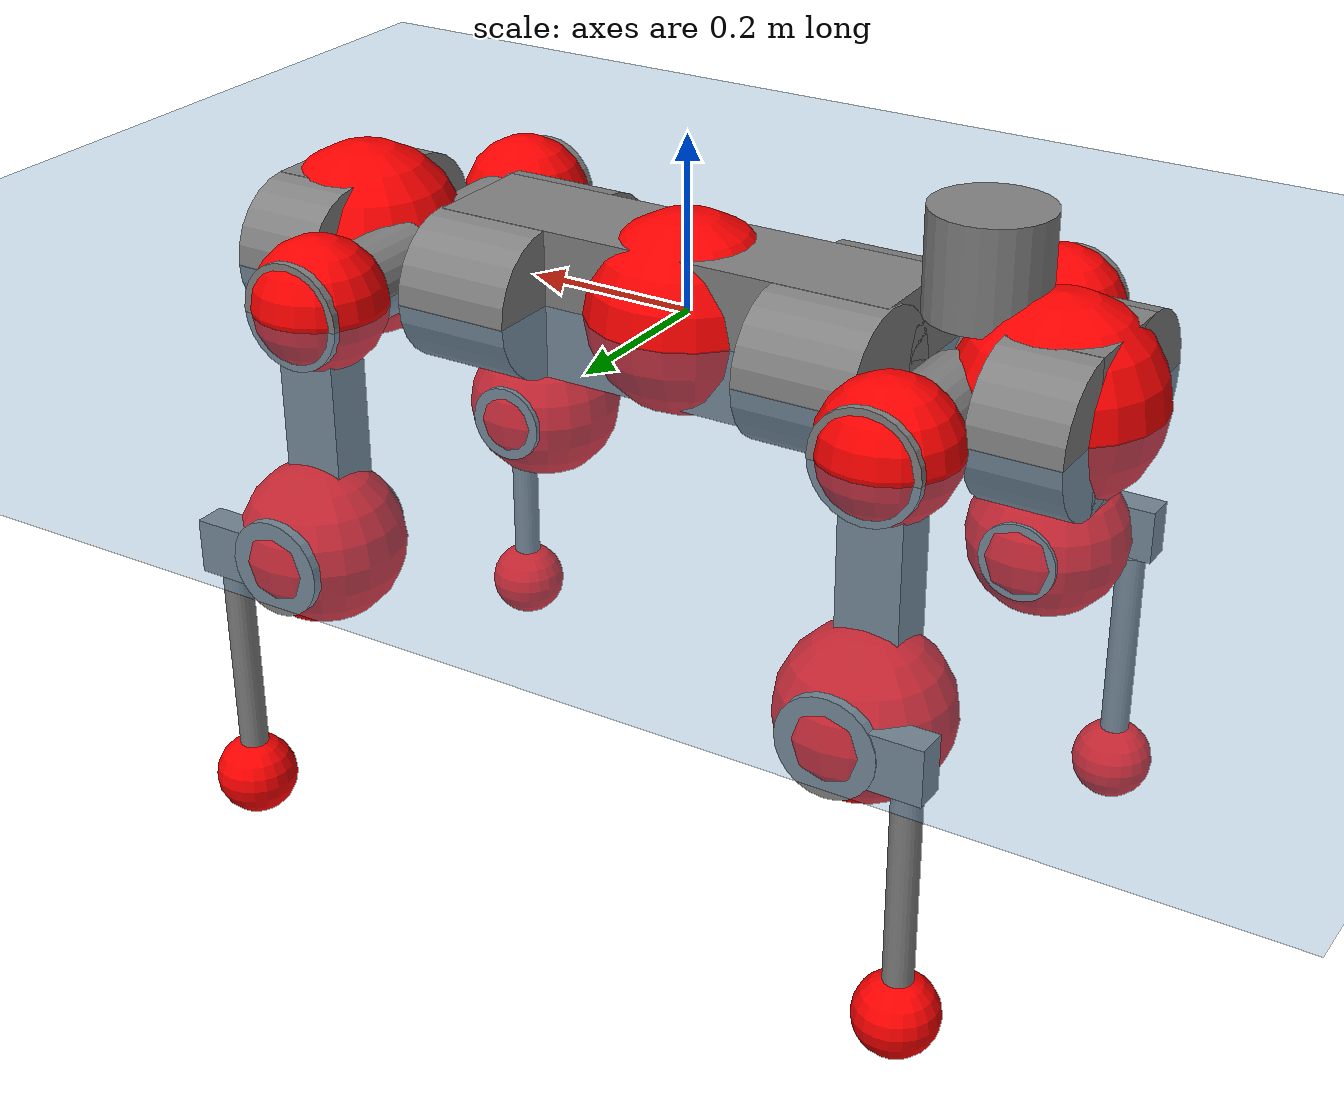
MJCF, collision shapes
<mujoco model="anymal_c">
  <compiler angle="radian" assetdir="assets" balanceinertia="true" inertiafromgeom="false"/>

  <option timestep="0.005" density="1.2" viscosity="2e-05"/>

  <size nkey="1"/>

  <visual>
    <quality shadowsize="8192"/>
    <map shadowclip="0.5"/>
  </visual>

  <default>
    <default class="/">
      <material specular="0" shininess="0.25"/>
      <geom contype="0" conaffinity="0" group="1" solref="-1000 -80"/>
      <site size="0.01 0.005 0.005" group="5"/>
      <general forcelimited="true" forcerange="-80 80" biastype="affine" gainprm="80" biasprm="0 -80 -2"/>
      <default class="anymal_c">
        <joint armature="0.01" damping="0.01" frictionloss="0.1"/>
        <default class="visual">
          <geom type="mesh" group="2"/>
          <default class="visual_zflip"/>
        </default>
        <default class="collision">
          <geom type="cylinder" group="3"/>
          <default class="foot">
            <geom size="0.03 0 0" type="sphere" condim="6" priority="1" friction="0.8 0.02 0.01" solimp="0.015 1 0.03"/>
          </default>
        </default>
      </default>
      <default class="reward_collision_sphere">
        <geom group="5" rgba="1 0 0 1"/>
      </default>
    </default>
  </default>

  <asset>
    <texture type="skybox" colorspace="auto" name="//unnamed_texture_0" builtin="gradient" rgb1="0.95 0.95 0.95" rgb2="0.95 0.95 0.95" width="100" height="600"/>
    <texture type="2d" colorspace="auto" name="texplane" builtin="checker" rgb1="0.345 0.575 0.748" rgb2="0.345 0.575 0.748" markrgb="1 1 1" width="512" height="512"/>
    <texture type="2d" colorspace="linear" name="base" file="base.png"/>
    <texture type="2d" colorspace="linear" name="top_shell" file="top_shell.png"/>
    <texture type="2d" colorspace="linear" name="bottom_shell" file="bottom_shell.png"/>
    <texture type="2d" colorspace="linear" name="remote" file="remote.png"/>
    <texture type="2d" colorspace="linear" name="hatch" file="hatch.png"/>
    <texture type="2d" colorspace="linear" name="handle" file="handle.png"/>
    <texture type="2d" colorspace="linear" name="face" file="face.png"/>
    <texture type="2d" colorspace="linear" name="battery" file="battery.png"/>
    <texture type="2d" colorspace="linear" name="lidar_cage" file="lidar_cage.png"/>
    <texture type="2d" colorspace="linear" name="depth_camera" file="depth_camera.png"/>
    <texture type="2d" colorspace="linear" name="wide_angle_camera" file="wide_angle_camera.png"/>
    <texture type="2d" colorspace="linear" name="lidar" file="lidar.png"/>
    <texture type="2d" colorspace="linear" name="drive" file="drive.png"/>
    <texture type="2d" colorspace="linear" name="hip_l" file="hip_l.png"/>
    <texture type="2d" colorspace="linear" name="shank_l" file="shank_l.png"/>
    <texture type="2d" colorspace="linear" name="foot" file="foot.png"/>
    <texture type="2d" colorspace="linear" name="thigh" file="thigh.png"/>
    <texture type="2d" colorspace="linear" name="shank_r" file="shank_r.png"/>
    <texture type="2d" colorspace="linear" name="hip_r" file="hip_r.png"/>
    <material name="MatPlane" class="/" texture="texplane" texuniform="true" texrepeat="2 2" specular="0.9" shininess="0.5"/>
    <material name="black_plastic" class="/" rgba="0.007 0.007 0.007 1"/>
    <material name="green" class="/" rgba="0.052 0.178 0.033 1"/>
    <material name="red" class="/" rgba="0.178 0.006 0.005 1"/>
    <material name="yellow" class="/" rgba="0.178 0.119 0.006 1"/>
    <material name="lwl" class="/" rgba="0.8 0.8 0.8 1"/>
    <material name="base" class="/" texture="base"/>
    <material name="top_shell" class="/" texture="top_shell"/>
    <material name="bottom_shell" class="/" texture="bottom_shell"/>
    <material name="hip_l" class="/" texture="hip_l"/>
    <material name="thigh" class="/" texture="thigh"/>
    <material name="shank_l" class="/" texture="shank_l"/>
    <material name="foot" class="/" texture="foot"/>
    <material name="hip_r" class="/" texture="hip_r"/>
    <material name="shank" class="/" texture="shank_r"/>
    <material name="hatch" class="/" texture="hatch"/>
    <material name="remote" class="/" texture="remote"/>
    <material name="handle" class="/" texture="handle"/>
    <material name="face" class="/" texture="face"/>
    <material name="depth_camera" class="/" texture="depth_camera"/>
    <material name="wide_angle_camera" class="/" texture="wide_angle_camera"/>
    <material name="battery" class="/" texture="battery"/>
    <material name="lidar_cage" class="/" texture="lidar_cage"/>
    <material name="lidar" class="/" texture="lidar"/>
    <material name="drive" class="/" texture="drive"/>
    <mesh name="base_0" class="/" file="base_0.obj"/>
    <mesh name="base_1" class="/" file="base_1.obj"/>
    <mesh name="base_2" class="/" file="base_2.obj"/>
    <mesh name="base_3" class="/" file="base_3.obj"/>
    <mesh name="base_4" class="/" file="base_4.obj"/>
    <mesh name="base_5" class="/" file="base_5.obj"/>
    <mesh name="top_shell" class="/" file="top_shell.obj"/>
    <mesh name="bottom_shell" class="/" file="bottom_shell.obj"/>
    <mesh name="remote" class="/" file="remote.obj"/>
    <mesh name="handle" class="/" file="handle.obj"/>
    <mesh name="face" class="/" file="face.obj"/>
    <mesh name="wide_angle_camera" class="/" file="wide_angle_camera.obj"/>
    <mesh name="depth_camera" class="/" file="depth_camera.obj"/>
    <mesh name="battery" class="/" file="battery.obj"/>
    <mesh name="lidar_cage" class="/" file="lidar_cage.obj"/>
    <mesh name="lidar" class="/" file="lidar.obj"/>
    <mesh name="drive" class="/" file="drive.obj"/>
    <mesh name="hip_l" class="/" file="hip_l.obj"/>
    <mesh name="thigh" class="/" file="thigh.obj"/>
    <mesh name="shank_l" class="/" file="shank_l.obj"/>
    <mesh name="foot" class="/" file="foot.obj"/>
    <mesh name="hip_r" class="/" file="hip_r.obj"/>
    <mesh name="hatch" class="/" file="hatch.obj"/>
    <mesh name="shank_r" class="/" file="shank_r.obj"/>
  </asset>

  <worldbody>
    <geom name="floor" class="/" size="100 100 0.125" type="plane" group="0" material="MatPlane"/>
    <light name="toplight_shadow" class="/" pos="0 0 5" dir="0.0990148 0.0990148 -0.990148" type="directional" ambient="0.04 0.04 0.04" diffuse="0.55 0.55 0.55" specular="0.12 0.12 0.12"/>
    <light name="toplight_fill" class="/" pos="0 0 5" dir="0.0990148 0.0990148 -0.990148" type="directional" castshadow="false" ambient="0.04 0.04 0.04" diffuse="0.3 0.3 0.3" specular="0.08 0.08 0.08"/>
    <body name="trunk" childclass="anymal_c" pos="8.13092e-05 7.29697e-05 -0.000383209" quat="1 -5.4438e-05 2.0262e-05 -4.16887e-05">
      <inertial pos="0.00254112 0.00186791 0.0487481" quat="0.499636 0.500222 0.499954 0.500188" mass="16.9873" diaginertia="0.567457 0.404666 0.204737"/>
      <joint name="//unnamed_joint_0" type="free" armature="0" damping="0" frictionloss="0"/>
      <geom name="//unnamed_geom_1" class="visual" material="green" mesh="base_0"/>
      <geom name="//unnamed_geom_2" class="visual" material="yellow" mesh="base_1"/>
      <geom name="//unnamed_geom_3" class="visual" material="red" mesh="base_2"/>
      <geom name="//unnamed_geom_4" class="visual" material="black_plastic" mesh="base_3"/>
      <geom name="//unnamed_geom_5" class="visual" material="lwl" mesh="base_4"/>
      <geom name="//unnamed_geom_6" class="visual" material="base" mesh="base_5"/>
      <geom name="trunk_1" class="collision" size="0.277838 0.0670644 0.0862257" type="box"/>
      <geom name="trunk_2" class="collision" size="0.0862257 0.0694596" pos="0.211366 0.0640537 0" quat="0.707107 0 0.707107 0"/>
      <geom name="trunk_3" class="collision" size="0.0862257 0.0694596" pos="-0.211366 0.0640537 0" quat="0.707107 0 0.707107 0"/>
      <geom name="trunk_4" class="collision" size="0.0862257 0.0694596" pos="0.211366 -0.0640537 0" quat="0.707107 0 0.707107 0"/>
      <geom name="trunk_5" class="collision" size="0.0862257 0.0694596" pos="-0.211366 -0.0640537 0" quat="0.707107 0 0.707107 0"/>
      <geom name="//unnamed_geom_12" class="visual" material="top_shell" mesh="top_shell"/>
      <geom name="//unnamed_geom_13" class="visual" material="bottom_shell" mesh="bottom_shell"/>
      <geom name="//unnamed_geom_14" class="visual" material="remote" mesh="remote"/>
      <geom name="//unnamed_geom_15" class="visual" material="handle" mesh="handle"/>
      <geom name="//unnamed_geom_16" class="visual" pos="0.402809 0 0" quat="1 0 0 0" material="face" mesh="face"/>
      <geom name="trunk_6" class="collision" size="0.0526935 0.0670644 0.0862257" pos="0.456258 0 0" type="box"/>
      <geom name="//unnamed_geom_18" class="collision" size="0.0862257 0.0526935" pos="0.456258 0.0640537 0" quat="0.707107 0 0.707107 0"/>
      <geom name="//unnamed_geom_19" class="collision" size="0.0862257 0.0526935" pos="0.456258 -0.0640537 0" quat="0.707107 0 0.707107 0"/>
      <geom name="//unnamed_geom_20" class="visual" pos="0.44863 0 -0.0289485" quat="0.965926 0 0.258819 0" material="depth_camera" mesh="depth_camera"/>
      <geom name="//unnamed_geom_21" class="visual" pos="0.498531 0 0.0147805" material="wide_angle_camera" mesh="wide_angle_camera"/>
      <geom name="//unnamed_geom_22" class="visual_zflip" pos="-0.402809 0 0" quat="0 0 0 1" material="face" mesh="face"/>
      <geom name="trunk_7" class="collision" size="0.0526935 0.0670644 0.0862257" pos="-0.456258 0 0" quat="0 0 0 1" type="box"/>
      <geom name="//unnamed_geom_24" class="collision" size="0.0862257 0.0526935" pos="-0.456258 -0.0640537 0" quat="0 -0.707107 0 0.707107"/>
      <geom name="//unnamed_geom_25" class="collision" size="0.0862257 0.0526935" pos="-0.456258 0.0640537 0" quat="0 -0.707107 0 0.707107"/>
      <geom name="//unnamed_geom_26" class="visual" pos="-0.44863 0 -0.0289485" quat="0 -0.258819 0 0.965926" material="depth_camera" mesh="depth_camera"/>
      <geom name="//unnamed_geom_27" class="visual_zflip" pos="-0.498531 0 0.0147805" quat="0 0 0 1" material="wide_angle_camera" mesh="wide_angle_camera"/>
      <geom name="//unnamed_geom_28" class="visual" material="battery" mesh="battery"/>
      <geom name="//unnamed_geom_29" class="visual" pos="0 0.069221 0.0285641" quat="0.683013 -0.183013 0.183013 0.683013" material="depth_camera" mesh="depth_camera"/>
      <geom name="//unnamed_geom_30" class="visual" pos="0 -0.069221 0.0285641" quat="0.683013 0.183013 0.183013 -0.683013" material="depth_camera" mesh="depth_camera"/>
      <geom name="//unnamed_geom_31" class="visual" pos="-0.353734 0 0.0725695" quat="1 0 0 0" material="lidar_cage" mesh="lidar_cage"/>
      <geom name="trunk_8" class="collision" size="0.0670644 0.0574838" pos="-0.353734 0 0.13181"/>
      <geom name="//unnamed_geom_33" class="visual" pos="-0.353734 -2.22929e-05 0.1404" quat="0.707107 0 0 -0.707107" material="lidar" mesh="lidar"/>
      <geom name="//unnamed_geom_34" class="visual" pos="0.291442 0.0951912 -1.24698e-09" quat="0.258819 0.965926 0 0" material="drive" mesh="drive"/>
      <geom name="//unnamed_geom_35" class="visual" pos="0.291442 -0.0951912 1.24698e-09" quat="0.258819 -0.965926 0 0" material="drive" mesh="drive"/>
      <geom name="//unnamed_geom_36" class="visual" pos="-0.291442 0.0951912 1.24698e-09" quat="0 0 0.965926 -0.258819" material="drive" mesh="drive"/>
      <geom name="//unnamed_geom_37" class="visual" pos="-0.291442 -0.0951912 -1.24698e-09" quat="0 0 -0.965926 -0.258819" material="drive" mesh="drive"/>
      <geom name="//unnamed_geom_38" class="visual" pos="0.112728 0 0.0720759" quat="1 0 0 0" material="hatch" mesh="hatch"/>
      <geom name="//unnamed_geom_39" class="reward_collision_sphere" size="0.114968"/>
      <geom name="//unnamed_geom_40" class="reward_collision_sphere" size="0.114968" pos="0.437308 0 0"/>
      <geom name="//unnamed_geom_41" class="reward_collision_sphere" size="0.114968" pos="-0.437308 0 0"/>
      <site name="imu" pos="0.236823 0.0104904 0.0405752" size="0.00958063"/>
      <camera name="track" pos="0 -1.83011 0" quat="0.707107 0.707107 0 0" mode="trackcom"/>
      <camera name="ego_camera" pos="0.437308 0 -0.0394936" quat="-0.5 -0.5 0.5 0.5"/>
      <body name="LF_HIP" pos="0.292176 0.095684 0.000802718" quat="0.258663 0.965967 0.000433508 -1.97156e-05">
        <inertial pos="0.0537354 -0.0134428 -0.00731895" quat="-0.126743 0.71074 -0.135284 0.678589" mass="2.49036" diaginertia="0.00512276 0.00321372 0.00310106"/>
        <joint name="LF_HAA" pos="0 0 0" axis="0.999997 -0.00107413 -0.00221073" range="-0.699618 0.48814" armature="0.00946609" damping="0.00670497" frictionloss="0.0899331"/>
        <geom name="//unnamed_geom_42" class="visual" pos="0 -7.3354e-05 1.20483e-05" quat="0.258819 -0.965926 0 0" material="hip_l" mesh="hip_l"/>
        <geom name="//unnamed_geom_43" class="visual" pos="0.0582106 -0.0698131 -0.0408413" quat="0.183013 -0.683013 0.683013 0.183013" material="drive" mesh="drive"/>
        <geom name="//unnamed_geom_44" class="collision" size="0.0479032 0.0670644" pos="0.0582106 -0.0109438 -0.00681759" quat="-0.353553 -0.612372 0.612372 -0.353553"/>
        <body name="LF_THIGH" pos="0.0586423 -0.066198 -0.0419711" quat="0.183082 -0.682955 0.683119 0.182761">
          <inertial pos="0.0303866 5.10381e-05 -0.241919" quat="0.993159 -0.00519834 -0.0808827 0.0840637" mass="2.6277" diaginertia="0.0263017 0.0189927 0.00374114"/>
          <joint name="LF_HFE" pos="0 0 0" axis="0.999998 -0.00213362 0.000577038" stiffness="0.00423315" range="-3.14667 3.11864" armature="0.00941764" damping="0.00848442" frictionloss="0.0984682"/>
          <geom name="//unnamed_geom_45" class="visual" pos="0.00112897 1.77899e-06 0" quat="0.707107 0 0 -0.707107" material="thigh" mesh="thigh"/>
          <geom name="//unnamed_geom_46" class="collision" size="0.0622741 0.0383225" pos="0.0388718 0 0" quat="0.5 0.5 -0.5 -0.5"/>
          <geom name="//unnamed_geom_47" class="collision" size="0.0359274 0.0287419 0.135388" pos="0.0291539 0 -0.139525" quat="0.707107 0 0 -0.707107" type="box"/>
          <geom name="//unnamed_geom_48" class="visual" pos="0.0974711 0 -0.281392" quat="1 0 0 0" material="drive" mesh="drive"/>
          <geom name="//unnamed_geom_49" class="collision" size="0.0479032 0.0670644" pos="0.0294454 0 -0.281392" quat="0.707107 0 0.707107 0"/>
          <geom name="//unnamed_geom_50" class="reward_collision_sphere" size="0.076645" pos="0.0242949 0 0"/>
          <body name="LF_SHANK" pos="0.0981821 -0.000378074 -0.281359" quat="1 -0.000245564 0.000953534 -0.000135025">
            <inertial pos="0.0049096 -0.055988 -0.0798696" quat="0.992925 -0.116086 -0.00106246 -0.0249496" mass="0.519999" diaginertia="0.00882269 0.00581596 0.00104747"/>
            <joint name="LF_KFE" pos="0 0 0" axis="1 0.000560223 -0.000517849" range="-3.13092 3.13759" armature="0.00997678" damping="0.0146142" frictionloss="0.0938688"/>
            <geom name="//unnamed_geom_51" class="visual" pos="0.000368131 0.00196289 0" quat="0.707107 0 0 -0.707107" material="shank_l" mesh="shank_l"/>
            <geom name="LF_kfe_act" class="collision" size="0.0574838 0.0191613" pos="0.0194359 0 0" quat="0.5 0.5 -0.5 -0.5"/>
            <geom name="//unnamed_geom_53" class="collision" size="0.0550877 0.0323346 0.0182032" pos="0.0194359 -0.0526146 0" quat="0.5 0.5 -0.5 -0.5" type="box"/>
            <geom name="//unnamed_geom_54" class="visual" pos="0.0126818 -0.0798463 -0.333692" quat="0.382683 0 0 -0.92388" material="foot" mesh="foot"/>
            <geom name="LF_calf" class="collision" size="0.0167661 0.135328" pos="0.0126819 -0.0804789 -0.166846" quat="0.707107 0 0 -0.707107"/>
            <geom name="LF_foot" class="foot" size="0.0307513" pos="0.0126819 -0.0804789 -0.311476" quat="0.707107 0 0 -0.707107"/>
            <geom name="//unnamed_geom_57" class="reward_collision_sphere" size="0.0958063" pos="-0.0485898 0 0"/>
            <geom name="//unnamed_geom_58" class="reward_collision_sphere" size="0.0479032" pos="0.0126819 -0.0804789 -0.311476"/>
            <site name="LF_foot" class="foot" pos="0.0126819 -0.0804789 -0.311476" quat="0.707107 0 0 -0.707107" size="0.00958063"/>
          </body>
        </body>
      </body>
      <body name="RF_HIP" pos="0.290984 -0.0954174 -0.000112065" quat="0.258907 -0.965902 -0.00036775 -7.12224e-05">
        <inertial pos="0.0551009 0.0145557 -0.00835473" quat="0.135228 0.679079 0.127989 0.710059" mass="2.36891" diaginertia="0.00494684 0.00312204 0.0030875"/>
        <joint name="RF_HAA" pos="0 0 0" axis="0.999996 -0.0017283 -0.00244131" range="-0.477617 0.6862" armature="0.00972456" damping="0.00565837" frictionloss="0.0961843"/>
        <geom name="//unnamed_geom_59" class="visual" pos="0 7.33534e-05 1.20483e-05" quat="0.258819 0.965926 0 0" material="hip_r" mesh="hip_r"/>
        <geom name="//unnamed_geom_60" class="visual" pos="0.0582106 0.0698131 -0.0408413" quat="0.183013 0.683013 0.683013 -0.183013" material="drive" mesh="drive"/>
        <geom name="//unnamed_geom_61" class="collision" size="0.0479032 0.0670644" pos="0.0582106 0.0109438 -0.00681759" quat="-0.353553 0.612372 0.612372 0.353553"/>
        <body name="RF_THIGH" pos="0.0607741 0.0660271 -0.0421351" quat="0.182599 0.682833 0.683261 -0.183171">
          <inertial pos="0.0298057 -0.000427005 -0.24234" quat="0.992838 -0.0054006 -0.0804012 0.0881945" mass="2.80472" diaginertia="0.0263478 0.0199652 0.0040341"/>
          <joint name="RF_HFE" pos="0 0 0" axis="0.999952 -0.00625995 -0.00750677" stiffness="0.0057764" range="-3.09637 3.10271" armature="0.0094371" damping="0.00276856" frictionloss="0.0978155"/>
          <geom name="//unnamed_geom_62" class="visual" pos="0.00112897 1.77899e-06 0" quat="0.707107 0 0 -0.707107" material="thigh" mesh="thigh"/>
          <geom name="//unnamed_geom_63" class="collision" size="0.0622741 0.0383225" pos="0.0388718 0 0" quat="0.5 0.5 0.5 0.5"/>
          <geom name="//unnamed_geom_64" class="collision" size="0.0359274 0.0287419 0.135388" pos="0.0291539 0 -0.139525" quat="0.707107 0 0 0.707107" type="box"/>
          <geom name="//unnamed_geom_65" class="visual" pos="0.0974711 0 -0.281392" quat="1 0 0 0" material="drive" mesh="drive"/>
          <geom name="//unnamed_geom_66" class="collision" size="0.0479032 0.0670644" pos="0.0294454 0 -0.281392" quat="0.707107 0 0.707107 0"/>
          <geom name="//unnamed_geom_67" class="reward_collision_sphere" size="0.076645" pos="0.0242949 0 0"/>
          <body name="RF_SHANK" pos="0.0991579 -0.000483631 -0.281962" quat="1 -3.5461e-05 -1.83146e-06 -1.34565e-05">
            <inertial pos="0.00654559 0.0564729 -0.0772525" quat="0.992637 0.118398 0.00208703 0.0254939" mass="0.503127" diaginertia="0.00878793 0.00595701 0.00105584"/>
            <joint name="RF_KFE" pos="0 0 0" axis="0.999914 0.0100565 0.00846295" range="-3.15268 3.11184" armature="0.00961654" damping="0.010217" frictionloss="0.0846745"/>
            <geom name="//unnamed_geom_68" class="visual" pos="0.000368129 -0.00196289 0" quat="0.707107 0 0 0.707107" material="shank" mesh="shank_r"/>
            <geom name="RF_kfe_act" class="collision" size="0.0574838 0.0191613" pos="0.0194359 0 0" quat="0.5 0.5 0.5 0.5"/>
            <geom name="//unnamed_geom_70" class="collision" size="0.0550877 0.0323346 0.0182032" pos="0.0194359 0.0526146 0" quat="0.5 0.5 0.5 0.5" type="box"/>
            <geom name="//unnamed_geom_71" class="visual" pos="0.012682 0.0798463 -0.333692" quat="0.382683 0 0 0.92388" material="foot" mesh="foot"/>
            <geom name="RF_calf" class="collision" size="0.0167661 0.135328" pos="0.0126819 0.0804789 -0.166846" quat="0.707107 0 0 0.707107"/>
            <geom name="RF_foot" class="foot" size="0.0296482" pos="0.0126819 0.0804789 -0.311476" quat="0.707107 0 0 0.707107"/>
            <geom name="//unnamed_geom_74" class="reward_collision_sphere" size="0.0958063" pos="-0.0485898 0 0"/>
            <geom name="//unnamed_geom_75" class="reward_collision_sphere" size="0.0479032" pos="0.0126819 0.0804789 -0.311476"/>
            <site name="RF_foot" class="foot" pos="0.0126819 0.0804789 -0.311476" quat="0.707107 0 0 0.707107" size="0.00958063"/>
          </body>
        </body>
      </body>
      <body name="LH_HIP" pos="-0.290872 0.0962236 0.000404788" quat="-3.01094e-06 1.11074e-06 0.965925 -0.258822">
        <inertial pos="0.0560168 0.0123966 -0.00804565" quat="0.128007 0.681536 0.136925 0.707372" mass="2.37215" diaginertia="0.00501481 0.00315641 0.00312348"/>
        <joint name="LH_HAA" pos="0 0 0" axis="1 0.00030553 -0.000318" range="-0.500211 0.74029" armature="0.00956187" damping="0.00915119" frictionloss="0.0924334"/>
        <geom name="//unnamed_geom_76" class="visual" pos="0 7.33534e-05 1.20483e-05" quat="-0.258819 -0.965926 0 0" material="hip_r" mesh="hip_r"/>
        <geom name="//unnamed_geom_77" class="visual" pos="0.0582106 0.0698131 -0.0408413" quat="0.183013 0.683013 0.683013 -0.183013" material="drive" mesh="drive"/>
        <geom name="//unnamed_geom_78" class="collision" size="0.0479032 0.0670644" pos="0.0582106 0.0109438 -0.00681759" quat="-0.353553 0.612372 0.612372 0.353553"/>
        <body name="LH_THIGH" pos="0.0575485 0.0652734 -0.0416031" quat="0.18299 0.683052 0.682969 -0.183051">
          <inertial pos="0.0309742 -0.00045941 -0.242296" quat="0.992471 -0.00789998 -0.0795077 0.0928266" mass="2.72659" diaginertia="0.0268095 0.0197568 0.00397645"/>
          <joint name="LH_HFE" pos="0 0 0" axis="0.999997 0.00149842 0.00179791" range="-3.1385 3.14259" armature="0.00957308" damping="0.00770819" frictionloss="0.0951315"/>
          <geom name="//unnamed_geom_79" class="visual" pos="0.00112897 1.77899e-06 0" quat="0.707107 0 0 -0.707107" material="thigh" mesh="thigh"/>
          <geom name="//unnamed_geom_80" class="collision" size="0.0622741 0.0383225" pos="0.0388718 0 0" quat="0.5 0.5 -0.5 -0.5"/>
          <geom name="//unnamed_geom_81" class="collision" size="0.0359274 0.0287419 0.135388" pos="0.0291539 0 -0.139525" quat="0.707107 0 0 -0.707107" type="box"/>
          <geom name="//unnamed_geom_82" class="visual" pos="0.0974711 0 -0.281392" quat="1 0 0 0" material="drive" mesh="drive"/>
          <geom name="//unnamed_geom_83" class="collision" size="0.0479032 0.0670644" pos="0.0294454 0 -0.281392" quat="0.707107 0 0.707107 0"/>
          <geom name="//unnamed_geom_84" class="reward_collision_sphere" size="0.076645" pos="0.0242949 0 0"/>
          <body name="LH_SHANK" pos="0.0983923 -0.000700037 -0.281845" quat="1 0.000165861 -0.000321786 0.000108341">
            <inertial pos="0.00613305 0.0569586 -0.0797931" quat="0.992931 0.115935 -0.000820475 0.0254144" mass="0.522584" diaginertia="0.00917662 0.00623926 0.00111436"/>
            <joint name="LH_KFE" pos="0 0 0" axis="0.999991 0.00360068 -0.0023075" range="-3.14401 3.09185" armature="0.00942038" damping="0.0124581" frictionloss="0.0918251"/>
            <geom name="//unnamed_geom_85" class="visual" pos="0.000368129 -0.00196289 0" quat="-0.707107 0 0 -0.707107" material="shank" mesh="shank_r"/>
            <geom name="LH_kfe_act" class="collision" size="0.0574838 0.0191613" pos="0.0194359 0 0" quat="0.5 0.5 -0.5 -0.5"/>
            <geom name="//unnamed_geom_87" class="collision" size="0.0550877 0.0323346 0.0182032" pos="0.0194359 0.0526146 0" quat="0.5 0.5 -0.5 -0.5" type="box"/>
            <geom name="//unnamed_geom_88" class="visual" pos="0.012682 0.0798463 -0.333692" quat="-0.382683 0 0 -0.92388" material="foot" mesh="foot"/>
            <geom name="LH_calf" class="collision" size="0.0167661 0.135328" pos="0.0126819 0.0804789 -0.166846" quat="0.707107 0 0 -0.707107"/>
            <geom name="LH_foot" class="foot" size="0.0278384" pos="0.0126819 0.0804789 -0.311476" quat="0.707107 0 0 -0.707107"/>
            <geom name="//unnamed_geom_91" class="reward_collision_sphere" size="0.0958063" pos="-0.0485898 0 0"/>
            <geom name="//unnamed_geom_92" class="reward_collision_sphere" size="0.0479032" pos="0.0126819 0.0804789 -0.311476"/>
            <site name="LH_foot" class="foot" pos="0.0126819 0.0804789 -0.311476" quat="0.707107 0 0 -0.707107" size="0.00958063"/>
          </body>
        </body>
      </body>
      <body name="RH_HIP" pos="-0.291268 -0.0945037 0.000154006" quat="8.85727e-05 -0.000355565 -0.965736 -0.259525">
        <inertial pos="0.0547636 -0.0149351 -0.00747384" quat="-0.127099 0.715296 -0.125915 0.675532" mass="2.46607" diaginertia="0.00506344 0.00318612 0.00309294"/>
        <joint name="RH_HAA" pos="0 0 0" axis="0.999991 -0.00163688 0.00395638" stiffness="0.00143584" range="-0.751769 0.479353" armature="0.00878878" damping="0.00963509" frictionloss="0.0950664"/>
        <geom name="//unnamed_geom_93" class="visual" pos="0 -7.3354e-05 1.20483e-05" quat="-0.258819 0.965926 0 0" material="hip_l" mesh="hip_l"/>
        <geom name="//unnamed_geom_94" class="visual" pos="0.0582106 -0.0698131 -0.0408413" quat="-0.183013 0.683013 -0.683013 -0.183013" material="drive" mesh="drive"/>
        <geom name="//unnamed_geom_95" class="collision" size="0.0479032 0.0670644" pos="0.0582106 -0.0109438 -0.00681759" quat="0.353553 0.612372 -0.612372 0.353553"/>
        <body name="RH_THIGH" pos="0.0577555 -0.0658558 -0.0435886" quat="-0.182951 0.682965 -0.683021 -0.183221">
          <inertial pos="0.0302394 0.0023002 -0.242828" quat="0.992871 -0.00856865 -0.0809329 0.0870867" mass="2.61383" diaginertia="0.0253624 0.0186809 0.00378469"/>
          <joint name="RH_HFE" pos="0 0 0" axis="1 -0.000631668 -0.000384914" range="-3.16034 3.10783" armature="0.0107992" damping="0.00874152" frictionloss="0.0915407"/>
          <geom name="//unnamed_geom_96" class="visual" pos="0.00112897 1.77899e-06 0" quat="0.707107 0 0 -0.707107" material="thigh" mesh="thigh"/>
          <geom name="//unnamed_geom_97" class="collision" size="0.0622741 0.0383225" pos="0.0388718 0 0" quat="0.5 0.5 0.5 0.5"/>
          <geom name="//unnamed_geom_98" class="collision" size="0.0359274 0.0287419 0.135388" pos="0.0291539 0 -0.139525" quat="0.707107 0 0 0.707107" type="box"/>
          <geom name="//unnamed_geom_99" class="visual" pos="0.0974711 0 -0.281392" quat="1 0 0 0" material="drive" mesh="drive"/>
          <geom name="//unnamed_geom_100" class="collision" size="0.0479032 0.0670644" pos="0.0294454 0 -0.281392" quat="0.707107 0 0.707107 0"/>
          <geom name="//unnamed_geom_101" class="reward_collision_sphere" size="0.076645" pos="0.0242949 0 0"/>
          <body name="RH_SHANK" pos="0.0969034 -0.00012805 -0.282362" quat="1 0.000260097 0.000212816 8.47798e-05">
            <inertial pos="0.00465722 -0.0557201 -0.0798935" quat="0.99194 -0.12475 0.00323615 -0.0219782" mass="0.511135" diaginertia="0.00888939 0.00604872 0.0010916"/>
            <joint name="RH_KFE" pos="0 0 0" axis="0.999995 -0.00294438 -0.000784328" stiffness="0.00364309" range="-3.1022 3.16646" armature="0.00951389" damping="0.00815894" frictionloss="0.0973516"/>
            <geom name="//unnamed_geom_102" class="visual" pos="0.000368131 0.00196289 0" quat="0.707107 0 0 -0.707107" material="shank_l" mesh="shank_l"/>
            <geom name="RH_kfe_act" class="collision" size="0.0574838 0.0191613" pos="0.0194359 0 0" quat="0.5 0.5 0.5 0.5"/>
            <geom name="//unnamed_geom_104" class="collision" size="0.0550877 0.0323346 0.0182032" pos="0.0194359 -0.0526146 0" quat="0.5 0.5 0.5 0.5" type="box"/>
            <geom name="//unnamed_geom_105" class="visual" pos="0.0126818 -0.0798463 -0.333692" quat="0.382683 0 0 -0.92388" material="foot" mesh="foot"/>
            <geom name="RH_calf" class="collision" size="0.0167661 0.135328" pos="0.0126819 -0.0804789 -0.166846" quat="0.707107 0 0 0.707107"/>
            <geom name="RH_foot" class="foot" size="0.024721" pos="0.0126819 -0.0804789 -0.311476" quat="0.707107 0 0 0.707107"/>
            <geom name="//unnamed_geom_108" class="reward_collision_sphere" size="0.0958063" pos="-0.0485898 0 0"/>
            <geom name="//unnamed_geom_109" class="reward_collision_sphere" size="0.0479032" pos="0.0126819 -0.0804789 -0.311476"/>
            <site name="RH_foot" class="foot" pos="0.0126819 -0.0804789 -0.311476" quat="0.707107 0 0 0.707107" size="0.00958063"/>
          </body>
        </body>
      </body>
    </body>
  </worldbody>

  <contact>
    <pair class="/" geom1="floor" geom2="LF_foot" name="//unnamed_contact_0"/>
    <pair class="/" geom1="floor" geom2="RF_foot" name="//unnamed_contact_1"/>
    <pair class="/" geom1="floor" geom2="LH_foot" name="//unnamed_contact_2"/>
    <pair class="/" geom1="floor" geom2="RH_foot" name="//unnamed_contact_3"/>
  </contact>

  <actuator>
    <general name="LF_HAA" class="/" joint="LF_HAA" forcerange="-79.3348 79.3348" gainprm="80.7002" biasprm="0 -80.7002 -1.90244"/>
    <general name="LF_HFE" class="/" joint="LF_HFE" forcerange="-70.1586 70.1586" gainprm="80.7002" biasprm="0 -80.7002 -1.90244"/>
    <general name="LF_KFE" class="/" joint="LF_KFE" forcerange="-75.3777 75.3777" gainprm="80.7002" biasprm="0 -80.7002 -1.90244"/>
    <general name="RF_HAA" class="/" joint="RF_HAA" forcerange="-79.2566 79.2566" gainprm="80.7002" biasprm="0 -80.7002 -1.90244"/>
    <general name="RF_HFE" class="/" joint="RF_HFE" forcerange="-74.9868 74.9868" gainprm="80.7002" biasprm="0 -80.7002 -1.90244"/>
    <general name="RF_KFE" class="/" joint="RF_KFE" forcerange="-79.5144 79.5144" gainprm="80.7002" biasprm="0 -80.7002 -1.90244"/>
    <general name="LH_HAA" class="/" joint="LH_HAA" forcerange="-77.5115 77.5115" gainprm="80.7002" biasprm="0 -80.7002 -1.90244"/>
    <general name="LH_HFE" class="/" joint="LH_HFE" forcerange="-76.7873 76.7873" gainprm="80.7002" biasprm="0 -80.7002 -1.90244"/>
    <general name="LH_KFE" class="/" joint="LH_KFE" forcerange="-79.9055 79.9055" gainprm="80.7002" biasprm="0 -80.7002 -1.90244"/>
    <general name="RH_HAA" class="/" joint="RH_HAA" forcerange="-70.6693 70.6693" gainprm="80.7002" biasprm="0 -80.7002 -1.90244"/>
    <general name="RH_HFE" class="/" joint="RH_HFE" forcerange="-76.4384 76.4384" gainprm="80.7002" biasprm="0 -80.7002 -1.90244"/>
    <general name="RH_KFE" class="/" joint="RH_KFE" forcerange="-77.5103 77.5103" gainprm="80.7002" biasprm="0 -80.7002 -1.90244"/>
  </actuator>

  <sensor>
    <gyro site="imu" name="imu_angular_velocity"/>
    <velocimeter site="imu" name="imu_linear_velocity"/>
    <framelinvel objtype="site" objname="LF_foot" name="LF_foot_global_linear_velocity"/>
    <framelinvel objtype="site" objname="RF_foot" name="RF_foot_global_linear_velocity"/>
    <framelinvel objtype="site" objname="LH_foot" name="LH_foot_global_linear_velocity"/>
    <framelinvel objtype="site" objname="RH_foot" name="RH_foot_global_linear_velocity"/>
  </sensor>

  <keyframe>
    <key name="home" qpos="0 0 0.55 1 0 0 0 0 0.4 -0.8 0 -0.4 0.8 0 -0.4 0.8 0 0.4 -0.8"/>
  </keyframe>
</mujoco>
